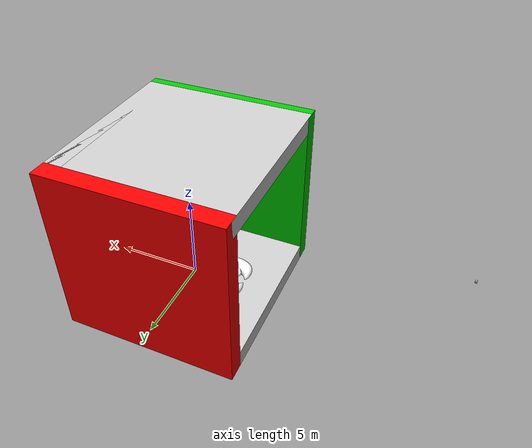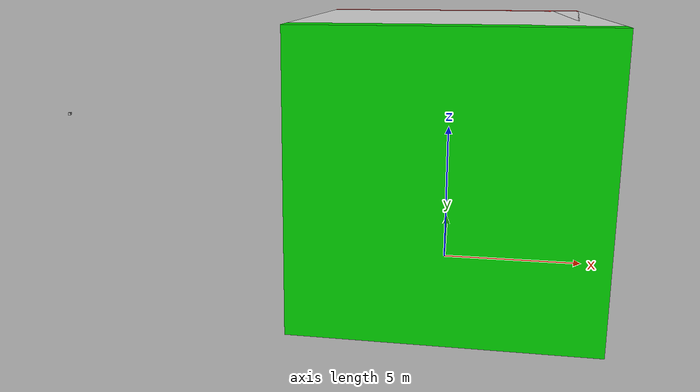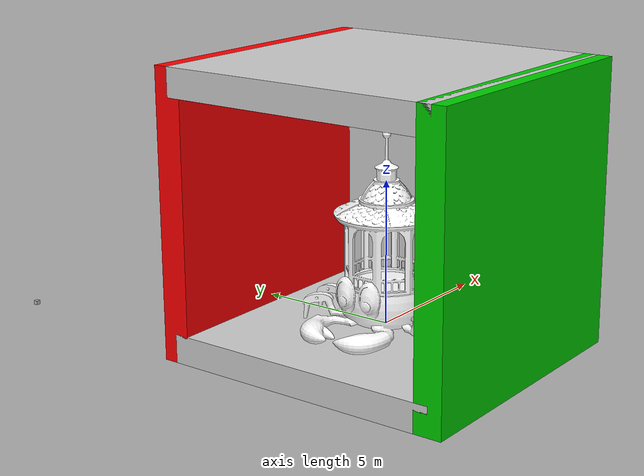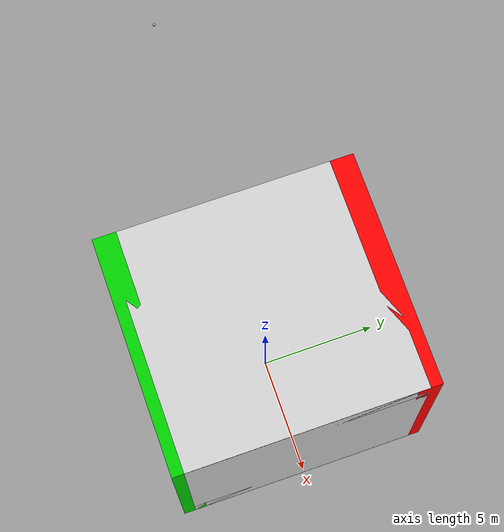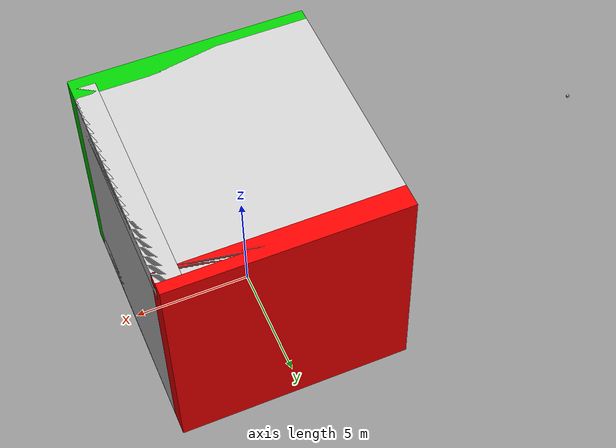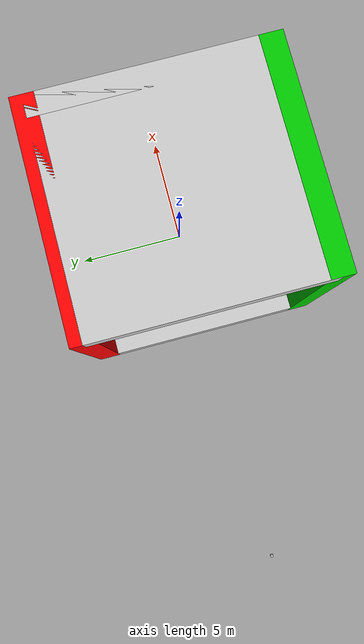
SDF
<?xml version="1.0" ?>
<sdf version="1.10">
    <world name="gi_demo">
        <!--sensor plugins-->
        <plugin
        filename="gz-sim-physics-system"
        name="gz::sim::systems::Physics">
        </plugin>
        <plugin
            filename="gz-sim-sensors-system"
            name="gz::sim::systems::Sensors">
            <render_engine>ogre2</render_engine>

            <!--TODO: enable GI for sensors-->
            <global_illumination type="vct">
                <enabled>true</enabled>
                <resolution>64 16 16</resolution>
                <octant_count>1 1 1</octant_count>
                <bounce_count>6</bounce_count>
                <high_quality>true</high_quality>
                <anisotropic>true</anisotropic>
                <thin_wall_counter>1.0</thin_wall_counter>
                <conserve_memory>true</conserve_memory>
                <debug_vis_mode>fff</debug_vis_mode>
            </global_illumination>
        </plugin>
        <plugin
            filename="gz-sim-user-commands-system"
            name="gz::sim::systems::UserCommands">
        </plugin>
        <plugin
            filename="gz-sim-scene-broadcaster-system"
            name="gz::sim::systems::SceneBroadcaster">
        </plugin>

        <!--scene description for system view-->
        <scene>
            <ambient>0.1 0.1 0.1</ambient>
            <background>0 0 0</background>
        </scene>

        <!--GUI plugins-->
        <gui>
        <plugin filename="MinimalScene" name="3D View">
            <gz-gui>
                <title>Cornell box GI demo</title>
                <property type="bool" key="showTitleBar">true</property>
                <property type="string" key="state">docked</property>
            </gz-gui>
            <engine>ogre2</engine>
            <camera_pose>-12 0 4 0 0.0 0</camera_pose>
        </plugin>

        <plugin filename="ImageDisplay" name="Image Display">
            <topic>camera</topic>
        </plugin>

        <plugin filename="GzSceneManager" name="Scene Manager"/>
        <plugin filename="InteractiveViewControl" name="Interactive view control"/>

        <plugin filename="TransformControl" name="Transform control">
            <gz-gui>
                <property key="resizable" type="bool">false</property>
                <property key="x" type="double">0</property>
                <property key="y" type="double">50</property>
                <property key="width" type="double">250</property>
                <property key="height" type="double">50</property>
                <property key="state" type="string">docked</property>
                <property key="showTitleBar" type="bool">true</property>
                <property key="cardBackground" type="string">#777777</property>
            </gz-gui>
        </plugin>
        <plugin filename="SelectEntities" name="Select Entities">
            <gz-gui>
                <property key="resizable" type="bool">false</property>
                <property key="width" type="double">5</property>
                <property key="height" type="double">5</property>
                <property key="state" type="string">floating</property>
                <property key="showTitleBar" type="bool">false</property>
            </gz-gui>
        </plugin>
        </gui>

        <!--lighting-->
        <light type="point" name="ceiling_light">
        <pose>0 0 7.0 0 0 0</pose>
        <diffuse>1 1 1 1</diffuse>
        <specular>0.0 0.0 0.0 0</specular>
        <attenuation>
            <range>50</range>
            <linear>0</linear>
            <constant>0</constant>
            <quadratic>0</quadratic>
        </attenuation>
        <cast_shadows>true</cast_shadows>
        <visualize>true</visualize>
        <intensity>1.0</intensity>
        </light>

        <!--wall models-->
        <model name="wall_left">
        <pose>0 5 4 0 0 0</pose>
        <static>true</static>
        <link name="link">
            <collision name="collision">
            <geometry>
                <box>
                <size>10 1 10</size>
                </box>
            </geometry>
            </collision>
            <visual name="visual">
            <geometry>
                <box>
                <size>10 1 10</size>
                </box>
            </geometry>
            <material>
                <ambient>1 0 0 1</ambient>
                <diffuse>1 0 0 1</diffuse>
                <specular>1 0 0 1</specular>
            </material>
            </visual>
        </link>
        </model>

        <model name="wall_right">
        <pose>0 -5 4 0 0 0</pose>
        <static>true</static>
        <link name="link">
            <collision name="collision">
            <geometry>
                <box>
                <size>10 1 10</size>
                </box>
            </geometry>
            </collision>
            <visual name="visual">
            <geometry>
                <box>
                <size>10 1 10</size>
                </box>
            </geometry>
            <material>
                <ambient>0 0.8 0 1</ambient>
                <diffuse>0 0.8 0 1</diffuse>
                <specular>0 0.8 0 1</specular>
            </material>
            </visual>
        </link>
        </model>

        <model name="floor">
        <pose>0 0 -0.5 0 0 0</pose>
        <static>true</static>
        <link name="link">
            <collision name="collision">
            <geometry>
                <box>
                <size>10 10 1</size>
                </box>
            </geometry>
            </collision>
            <visual name="visual">
            <geometry>
                <box>
                <size>10 10 1</size>
                </box>
            </geometry>
            <material>
                <ambient>0.8 0.8 0.8 1</ambient>
                <diffuse>0.8 0.8 0.8 1</diffuse>
                <specular>0.8 0.8 0.8 1</specular>
            </material>
            </visual>
        </link>
        </model>

        <model name="ceiling">
        <pose>0 0 8.5 0 0 0</pose>
        <static>true</static>
        <link name="link">
            <collision name="collision">
            <geometry>
                <box>
                <size>10 10 1</size>
                </box>
            </geometry>
            </collision>
            <visual name="visual">
            <geometry>
                <box>
                <size>10 10 1</size>
                </box>
            </geometry>
            <material>
                <ambient>0.8 0.8 0.8 1</ambient>
                <diffuse>0.8 0.8 0.8 1</diffuse>
                <specular>0.8 0.8 0.8 1</specular>
            </material>
            </visual>
        </link>
        </model>

        <model name="wall_back">
        <pose>4.5 0 4 0 0 0</pose>
        <static>true</static>
        <link name="link">
            <collision name="collision">
            <geometry>
                <box>
                <size>1 10 10</size>
                </box>
            </geometry>
            </collision>
            <visual name="visual">
            <geometry>
                <box>
                <size>1 10 10</size>
                </box>
            </geometry>
            <material>
                <ambient>0.8 0.8 0.8 1</ambient>
                <diffuse>0.8 0.8 0.8 1</diffuse>
                <specular>0.8 0.8 0.8 1</specular>
            </material>
            </visual>
        </link>
        </model>

        <!--scene objects-->
        <include>
            <pose>0 0 0.0 0 0 -1.57</pose>
            <uri>
              garden_mascot
            </uri>
        </include>

        <!--camera sensor-->
        <model name="camera">
        <pose>-15 0 5 0 0.0 0</pose>
        <static>true</static>
        <link name="link">
            <pose>0.05 0.05 0.05 0 0 0</pose>
            <collision name="collision">
            <geometry>
                <box>
                <size>0.1 0.1 0.1</size>
                </box>
            </geometry>
            </collision>
            <visual name="visual">
            <geometry>
                <box>
                <size>0.1 0.1 0.1</size>
                </box>
            </geometry>
            </visual>
            <sensor name="camera" type="camera">
            <camera>
                <horizontal_fov>1.047</horizontal_fov>
                <image>
                <width>2560</width>
                <height>1920</height>
                </image>
                <clip>
                <near>0.1</near>
                <far>100</far>
                </clip>
            </camera>
            <always_on>1</always_on>
            <update_rate>30</update_rate>
            <visualize>true</visualize>
            <topic>camera</topic>
            </sensor>
        </link>
        </model>
    </world>
</sdf>

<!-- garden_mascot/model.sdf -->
<sdf version="1.9">
    <model name="garden_mascot">
        <link name="base_link">
            <collision name="collision">
                <pose>0 0 0 0 0 0</pose>
                <geometry>
                    <mesh>
                        <uri>meshes/garden_mascot.dae</uri>
                        <scale>50 50 50</scale>
                    </mesh>
                </geometry>
            </collision>
            <visual name="White_visual">
                <geometry>
                    <mesh>
                        <uri>meshes/garden_mascot.dae</uri>
                        <submesh>
                            <name>White</name>
                            <center>false</center>
                        </submesh>
                        <scale>50 50 50</scale>
                    </mesh>
                </geometry>
                <material>
                    <diffuse>1.0 1.0 1.0 1.0</diffuse>
                    <specular>1.0 1.0 1.0 1.0</specular>
                </material>
            </visual>
            <visual name="Black_visual">
                <geometry>
                    <mesh>
                        <uri>meshes/garden_mascot.dae</uri>
                        <submesh>
                            <name>Black</name>
                            <center>false</center>
                        </submesh>
                        <scale>50 50 50</scale>
                    </mesh>
                </geometry>
                <material>
                    <diffuse>0 0 0 1</diffuse>
                    <specular>1.0 1.0 1.0 1.0</specular>
                </material>
            </visual>
            <visual name="Green_visual">
                <geometry>
                    <mesh>
                        <uri>meshes/garden_mascot.dae</uri>
                        <submesh>
                            <name>Green</name>
                            <center>false</center>
                        </submesh>
                        <scale>50 50 50</scale>
                    </mesh>
                </geometry>
                <material>
                    <diffuse>1 1 1 1</diffuse>
                    <specular>1.0 1.0 1.0 1.0</specular>
                    <pbr>
                      <metal>
                        <metalness>0</metalness>
                        <roughness>1</roughness>
                        <albedo_map>materials/textures/albedo_map.png</albedo_map>
                      </metal>
                    </pbr>
                </material>
            </visual>
        </link>
    </model>
</sdf>
